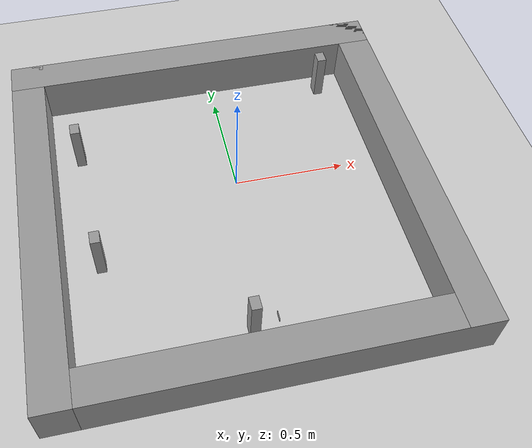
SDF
<sdf version="1.7">
 <world name="default">
  <light name="sun" type="directional">
   <pose>0 0 10 0 -0 0</pose>
   <diffuse>0.8 0.8 0.8 1</diffuse>
   <specular>0.2 0.2 0.2 1</specular>
   <attenuation>
    <range>1000</range>
    <constant>0.9</constant>
    <linear>0.01</linear>
    <quadratic>0.001</quadratic>
   </attenuation>
   <direction>-0.5 0.1 -0.9</direction>
   <spot><inner_angle>0</inner_angle><outer_angle>0</outer_angle><falloff>0</falloff></spot>
  </light>
  <model name="ground_plane">
   <static>1</static>
   <link name="link">
    <collision name="collision">
     <geometry><plane><normal>0 0 1</normal><size>100 100</size></plane></geometry>
     <surface>
      <contact><collide_bitmask>65535</collide_bitmask></contact>
      <friction><ode><mu>100</mu><mu2>50</mu2></ode></friction>
     </surface>
    </collision>
    <visual name="visual">
     <cast_shadows>0</cast_shadows>
     <geometry><plane><normal>0 0 1</normal><size>100 100</size></plane></geometry>
     <material>
      <script><uri>file://media/materials/scripts/gazebo.material</uri><name>Gazebo/Grey</name></script>
     </material>
    </visual>
   </link>
  </model>
  <gravity>0 0 -9.8</gravity>
  <magnetic_field>6e-06 2.3e-05 -4.2e-05</magnetic_field>
  <atmosphere type="adiabatic"/>
  <physics type="ode">
   <max_step_size>0.001</max_step_size>
   <real_time_factor>1</real_time_factor>
   <real_time_update_rate>1000</real_time_update_rate>
  </physics>
  <scene><ambient>0.4 0.4 0.4 1</ambient><background>0.7 0.7 0.7 1</background><shadows>1</shadows></scene>
  <audio><device>default</device></audio>
  <spherical_coordinates>
   <surface_model>EARTH_WGS84</surface_model>
   <latitude_deg>0</latitude_deg>
   <longitude_deg>0</longitude_deg>
   <elevation>0</elevation>
   <heading_deg>0</heading_deg>
  </spherical_coordinates>
  <model name="unit_box">
   <pose>-0.67856 0.28037 0.111106 -4e-06 -7e-06 7.3e-05</pose>
   <link name="link">
    <inertial>
     <mass>1</mass>
     <inertia>
      <ixx>0.166667</ixx>
      <ixy>0</ixy>
      <ixz>0</ixz>
      <iyy>0.166667</iyy>
      <iyz>0</iyz>
      <izz>0.166667</izz>
     </inertia>
    </inertial>
    <collision name="collision">
     <geometry><box><size>0.041423 0.056653 0.222212</size></box></geometry>
    </collision>
    <visual name="visual">
     <geometry><box><size>0.041423 0.056653 0.222212</size></box></geometry>
     <material>
      <script><name>Gazebo/Grey</name><uri>file://media/materials/scripts/gazebo.material</uri></script>
     </material>
    </visual>
   </link>
  </model>
  <model name="unit_box_clone">
   <pose>-0.650401 -0.321033 0.111106 1e-06 -1.2e-05 6e-06</pose>
   <link name="link">
    <inertial>
     <mass>1</mass>
     <inertia>
      <ixx>0.166667</ixx>
      <ixy>0</ixy>
      <ixz>0</ixz>
      <iyy>0.166667</iyy>
      <iyz>0</iyz>
      <izz>0.166667</izz>
     </inertia>
    </inertial>
    <collision name="collision">
     <geometry><box><size>0.041423 0.056652 0.222212</size></box></geometry>
    </collision>
    <visual name="visual">
     <geometry><box><size>0.041423 0.056652 0.222212</size></box></geometry>
     <material>
      <script><name>Gazebo/Grey</name><uri>file://media/materials/scripts/gazebo.material</uri></script>
     </material>
    </visual>
   </link>
  </model>
  <model name="unit_box_clone_0">
   <pose>0.529695 0.5082 0.111106 -1e-06 -0 -5e-05</pose>
   <link name="link">
    <inertial>
     <mass>1</mass>
     <inertia>
      <ixx>0.166667</ixx>
      <ixy>0</ixy>
      <ixz>0</ixz>
      <iyy>0.166667</iyy>
      <iyz>0</iyz>
      <izz>0.166667</izz>
     </inertia>
    </inertial>
    <collision name="collision">
     <geometry><box><size>0.041423 0.056652 0.222212</size></box></geometry>
    </collision>
    <visual name="visual">
     <geometry><box><size>0.041423 0.056652 0.222212</size></box></geometry>
     <material>
      <script><name>Gazebo/Grey</name><uri>file://media/materials/scripts/gazebo.material</uri></script>
     </material>
    </visual>
   </link>
  </model>
  <model name="unit_box_clone_1">
   <pose>-0.095657 -0.741599 0.111108 5.6e-05 5e-06 0.001452</pose>
   <link name="link">
    <inertial>
     <mass>1</mass>
     <inertia>
      <ixx>0.166667</ixx>
      <ixy>0</ixy>
      <ixz>0</ixz>
      <iyy>0.166667</iyy>
      <iyz>0</iyz>
      <izz>0.166667</izz>
     </inertia>
    </inertial>
    <collision name="collision">
     <geometry><box><size>0.041423 0.056652 0.222212</size></box></geometry>
    </collision>
    <visual name="visual">
     <geometry><box><size>0.041423 0.056652 0.222212</size></box></geometry>
     <material>
      <script><name>Gazebo/Grey</name><uri>file://media/materials/scripts/gazebo.material</uri></script>
     </material>
    </visual>
   </link>
  </model>
  <model name="aruco_marker_1">
   <pose>0.015293 -0.705182 0 0 -0 0</pose>
   <static>1</static>
   <link name="link">
    <gravity>0</gravity>
    <collision name="collision"><geometry><box><size>0.04 0.04 0.001</size></box></geometry></collision>
    <visual name="visual">
     <pose>0 0 0 3.14159 1.57079 3.14159</pose>
     <geometry><box><size>0.04 0.04 0.001</size></box></geometry>
     <material>
      <script>
       <uri>model:/home/monisha/simulation_ws/src/my_simulation/models/aruco_marker_1/materials/scripts</uri>
       <name>MarkerMaterial</name>
      </script>
     </material>
    </visual>
   </link>
  </model>
  <model name="arena_ttb3">
   <pose>0.596985 0.506606 0 0 -0 0</pose>
   <link name="Wall_10">
    <collision name="Wall_10_Collision">
     <geometry><box><size>1.75 0.15 0.2</size></box></geometry>
     <pose>0 0 0.1 0 -0 0</pose>
    </collision>
    <visual name="Wall_10_Visual">
     <pose>0 0 0.1 0 -0 0</pose>
     <geometry><box><size>1.75 0.15 0.2</size></box></geometry>
     <material>
      <script><uri>file://media/materials/scripts/gazebo.material</uri><name>Gazebo/Grey</name></script>
      <ambient>1 1 1 1</ambient>
     </material>
     <meta><layer>0</layer></meta>
    </visual>
    <pose>-0.6675 -1.4275 0 0 -0 3.14159</pose>
   </link>
   <link name="Wall_11">
    <collision name="Wall_11_Collision">
     <geometry><box><size>1.75 0.15 0.2</size></box></geometry>
     <pose>0 0 0.1 0 -0 0</pose>
    </collision>
    <visual name="Wall_11_Visual">
     <pose>0 0 0.1 0 -0 0</pose>
     <geometry><box><size>1.75 0.15 0.2</size></box></geometry>
     <material>
      <script><uri>file://media/materials/scripts/gazebo.material</uri><name>Gazebo/Grey</name></script>
      <ambient>1 1 1 1</ambient>
     </material>
     <meta><layer>0</layer></meta>
    </visual>
    <pose>-1.4675 -0.6275 0 0 -0 1.5708</pose>
   </link>
   <link name="Wall_8">
    <collision name="Wall_8_Collision">
     <geometry><box><size>1.75 0.15 0.2</size></box></geometry>
     <pose>0 0 0.1 0 -0 0</pose>
    </collision>
    <visual name="Wall_8_Visual">
     <pose>0 0 0.1 0 -0 0</pose>
     <geometry><box><size>1.75 0.15 0.2</size></box></geometry>
     <material>
      <script><uri>file://media/materials/scripts/gazebo.material</uri><name>Gazebo/Grey</name></script>
      <ambient>1 1 1 1</ambient>
     </material>
     <meta><layer>0</layer></meta>
    </visual>
    <pose>-0.6675 0.1725 0 0 -0 0</pose>
   </link>
   <link name="Wall_9">
    <collision name="Wall_9_Collision">
     <geometry><box><size>1.75 0.15 0.2</size></box></geometry>
     <pose>0 0 0.1 0 -0 0</pose>
    </collision>
    <visual name="Wall_9_Visual">
     <pose>0 0 0.1 0 -0 0</pose>
     <geometry><box><size>1.75 0.15 0.2</size></box></geometry>
     <material>
      <script><uri>file://media/materials/scripts/gazebo.material</uri><name>Gazebo/Grey</name></script>
      <ambient>1 1 1 1</ambient>
     </material>
     <meta><layer>0</layer></meta>
    </visual>
    <pose>0.1325 -0.6275 0 0 -0 -1.5708</pose>
   </link>
   <static>1</static>
  </model>
  <plugin name="gazebo_ros_init" filename="libgazebo_ros_init.so">
   <ros><namespace>/</namespace><argument>--ros-args</argument></ros>
  </plugin>
  <plugin name="gazebo_ros_factory" filename="libgazebo_ros_factory.so"/>
  <plugin name="gazebo_ros_api_plugin" filename="libgazebo_ros_api_plugin.so"/>
  <plugin name="gazebo_ros_state" filename="libgazebo_ros_state.so"/>
 </world>
</sdf>
